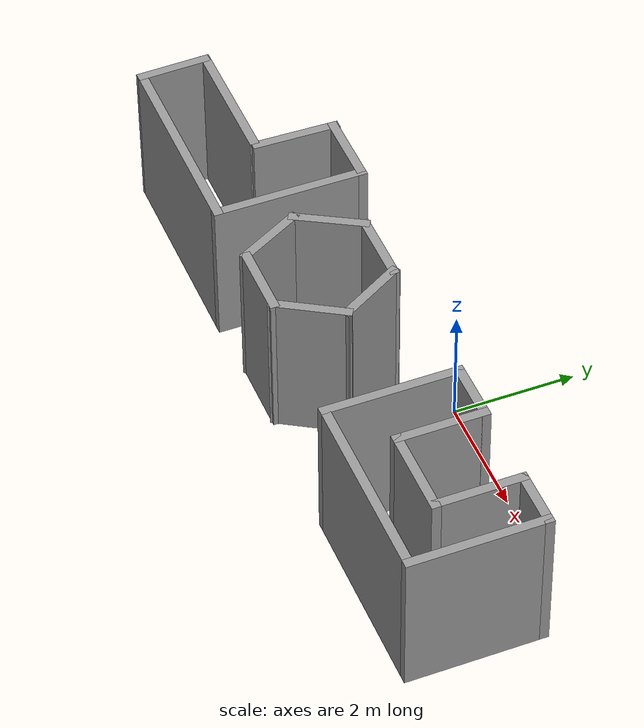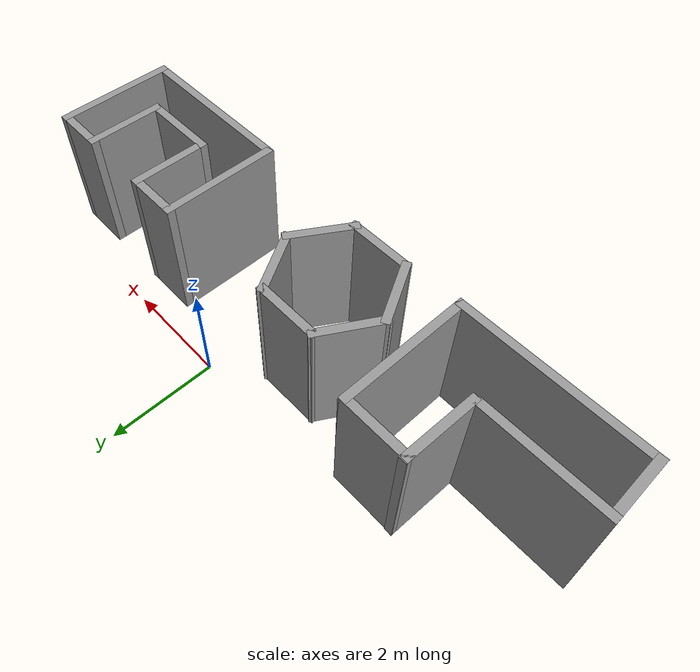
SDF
<?xml version='1.0'?>
<sdf version='1.7'>
  <model name='world_thrid'>
    <pose>-0.958392 -1.37453 0 0 -0 0</pose>
    <link name='Wall_0'>
      <collision name='Wall_0_Collision'>
        <geometry>
          <box>
            <size>1.25 0.15 2.5</size>
          </box>
        </geometry>
        <pose>0 0 1.25 0 -0 0</pose>
      </collision>
      <visual name='Wall_0_Visual'>
        <pose>0 0 1.25 0 -0 0</pose>
        <geometry>
          <box>
            <size>1.25 0.15 2.5</size>
          </box>
        </geometry>
        <material>
          <script>
            <uri>file://media/materials/scripts/gazebo.material</uri>
            <name>Gazebo/Grey</name>
          </script>
          <ambient>1 1 1 1</ambient>
        </material>
        <meta>
          <layer>0</layer>
        </meta>
      </visual>
      <pose>-0.448934 0.709216 0 0 -0 0</pose>
    </link>
    <link name='Wall_1'>
      <collision name='Wall_1_Collision'>
        <geometry>
          <box>
            <size>1.25 0.15 2.5</size>
          </box>
        </geometry>
        <pose>0 0 1.25 0 -0 0</pose>
      </collision>
      <visual name='Wall_1_Visual'>
        <pose>0 0 1.25 0 -0 0</pose>
        <geometry>
          <box>
            <size>1.25 0.15 2.5</size>
          </box>
        </geometry>
        <material>
          <script>
            <uri>file://media/materials/scripts/gazebo.material</uri>
            <name>Gazebo/Grey</name>
          </script>
          <ambient>1 1 1 1</ambient>
        </material>
        <meta>
          <layer>0</layer>
        </meta>
      </visual>
      <pose>0.376066 0.232902 0 0 -0 -1.0472</pose>
    </link>
    <link name='Wall_10'>
      <collision name='Wall_10_Collision'>
        <geometry>
          <box>
            <size>1 0.15 2.5</size>
          </box>
        </geometry>
        <pose>0 0 1.25 0 -0 0</pose>
      </collision>
      <visual name='Wall_10_Visual'>
        <pose>0 0 1.25 0 -0 0</pose>
        <geometry>
          <box>
            <size>1 0.15 2.5</size>
          </box>
        </geometry>
        <material>
          <script>
            <uri>file://media/materials/scripts/gazebo.material</uri>
            <name>Gazebo/Grey</name>
          </script>
          <ambient>1 1 1 1</ambient>
        </material>
        <meta>
          <layer>0</layer>
        </meta>
      </visual>
      <pose>5.0372 0.800469 0 0 -0 3.14159</pose>
    </link>
    <link name='Wall_11'>
      <collision name='Wall_11_Collision'>
        <geometry>
          <box>
            <size>1.5 0.15 2.5</size>
          </box>
        </geometry>
        <pose>0 0 1.25 0 -0 0</pose>
      </collision>
      <visual name='Wall_11_Visual'>
        <pose>0 0 1.25 0 -0 0</pose>
        <geometry>
          <box>
            <size>1.5 0.15 2.5</size>
          </box>
        </geometry>
        <material>
          <script>
            <uri>file://media/materials/scripts/gazebo.material</uri>
            <name>Gazebo/Grey</name>
          </script>
          <ambient>1 1 1 1</ambient>
        </material>
        <meta>
          <layer>0</layer>
        </meta>
      </visual>
      <pose>4.6122 0.125469 0 0 -0 -1.5708</pose>
    </link>
    <link name='Wall_12'>
      <collision name='Wall_12_Collision'>
        <geometry>
          <box>
            <size>1.5 0.15 2.5</size>
          </box>
        </geometry>
        <pose>0 0 1.25 0 -0 0</pose>
      </collision>
      <visual name='Wall_12_Visual'>
        <pose>0 0 1.25 0 -0 0</pose>
        <geometry>
          <box>
            <size>1.5 0.15 2.5</size>
          </box>
        </geometry>
        <material>
          <script>
            <uri>file://media/materials/scripts/gazebo.material</uri>
            <name>Gazebo/Grey</name>
          </script>
          <ambient>1 1 1 1</ambient>
        </material>
        <meta>
          <layer>0</layer>
        </meta>
      </visual>
      <pose>3.9372 -0.549531 0 0 -0 3.14159</pose>
    </link>
    <link name='Wall_13'>
      <collision name='Wall_13_Collision'>
        <geometry>
          <box>
            <size>1.5 0.15 2.5</size>
          </box>
        </geometry>
        <pose>0 0 1.25 0 -0 0</pose>
      </collision>
      <visual name='Wall_13_Visual'>
        <pose>0 0 1.25 0 -0 0</pose>
        <geometry>
          <box>
            <size>1.5 0.15 2.5</size>
          </box>
        </geometry>
        <material>
          <script>
            <uri>file://media/materials/scripts/gazebo.material</uri>
            <name>Gazebo/Grey</name>
          </script>
          <ambient>1 1 1 1</ambient>
        </material>
        <meta>
          <layer>0</layer>
        </meta>
      </visual>
      <pose>3.2622 0.125469 0 0 -0 1.5708</pose>
    </link>
    <link name='Wall_14'>
      <collision name='Wall_14_Collision'>
        <geometry>
          <box>
            <size>1.05 0.15 2.5</size>
          </box>
        </geometry>
        <pose>0 0 1.25 0 -0 0</pose>
      </collision>
      <visual name='Wall_14_Visual'>
        <pose>0 0 1.25 0 -0 0</pose>
        <geometry>
          <box>
            <size>1.05 0.15 2.5</size>
          </box>
        </geometry>
        <material>
          <script>
            <uri>file://media/materials/scripts/gazebo.material</uri>
            <name>Gazebo/Grey</name>
          </script>
          <ambient>1 1 1 1</ambient>
        </material>
        <meta>
          <layer>0</layer>
        </meta>
      </visual>
      <pose>2.8122 0.800469 0 0 -0 3.14159</pose>
    </link>
    <link name='Wall_17'>
      <collision name='Wall_17_Collision'>
        <geometry>
          <box>
            <size>2.25 0.15 2.5</size>
          </box>
        </geometry>
        <pose>0 0 1.25 0 -0 0</pose>
      </collision>
      <visual name='Wall_17_Visual'>
        <pose>0 0 1.25 0 -0 0</pose>
        <geometry>
          <box>
            <size>2.25 0.15 2.5</size>
          </box>
        </geometry>
        <material>
          <script>
            <uri>file://media/materials/scripts/gazebo.material</uri>
            <name>Gazebo/Grey</name>
          </script>
          <ambient>1 1 1 1</ambient>
        </material>
        <meta>
          <layer>0</layer>
        </meta>
      </visual>
      <pose>-4.41007 -0.19307 0 0 -0 3.14159</pose>
    </link>
    <link name='Wall_18'>
      <collision name='Wall_18_Collision'>
        <geometry>
          <box>
            <size>1.20481 0.15 2.5</size>
          </box>
        </geometry>
        <pose>0 0 1.25 0 -0 0</pose>
      </collision>
      <visual name='Wall_18_Visual'>
        <pose>0 0 1.25 0 -0 0</pose>
        <geometry>
          <box>
            <size>1.20481 0.15 2.5</size>
          </box>
        </geometry>
        <material>
          <script>
            <uri>file://media/materials/scripts/gazebo.material</uri>
            <name>Gazebo/Grey</name>
          </script>
          <ambient>1 1 1 1</ambient>
        </material>
        <meta>
          <layer>0</layer>
        </meta>
      </visual>
      <pose>-5.44486 -0.735466 0 0 -0 -1.54195</pose>
    </link>
    <link name='Wall_19'>
      <collision name='Wall_19_Collision'>
        <geometry>
          <box>
            <size>3.5 0.15 2.5</size>
          </box>
        </geometry>
        <pose>0 0 1.25 0 -0 0</pose>
      </collision>
      <visual name='Wall_19_Visual'>
        <pose>0 0 1.25 0 -0 0</pose>
        <geometry>
          <box>
            <size>3.5 0.15 2.5</size>
          </box>
        </geometry>
        <material>
          <script>
            <uri>file://media/materials/scripts/gazebo.material</uri>
            <name>Gazebo/Grey</name>
          </script>
          <ambient>1 1 1 1</ambient>
        </material>
        <meta>
          <layer>0</layer>
        </meta>
      </visual>
      <pose>-3.75465 -1.26265 0 0 -0 0</pose>
    </link>
    <link name='Wall_2'>
      <collision name='Wall_2_Collision'>
        <geometry>
          <box>
            <size>1.26552 0.15 2.5</size>
          </box>
        </geometry>
        <pose>0 0 1.25 0 -0 0</pose>
      </collision>
      <visual name='Wall_2_Visual'>
        <pose>0 0 1.25 0 -0 0</pose>
        <geometry>
          <box>
            <size>1.26552 0.15 2.5</size>
          </box>
        </geometry>
        <material>
          <script>
            <uri>file://media/materials/scripts/gazebo.material</uri>
            <name>Gazebo/Grey</name>
          </script>
          <ambient>1 1 1 1</ambient>
        </material>
        <meta>
          <layer>0</layer>
        </meta>
      </visual>
      <pose>0.360857 -0.719726 0 0 -0 -2.11801</pose>
    </link>
    <link name='Wall_20'>
      <collision name='Wall_20_Collision'>
        <geometry>
          <box>
            <size>2.5 0.15 2.5</size>
          </box>
        </geometry>
        <pose>0 0 1.25 0 -0 0</pose>
      </collision>
      <visual name='Wall_20_Visual'>
        <pose>0 0 1.25 0 -0 0</pose>
        <geometry>
          <box>
            <size>2.5 0.15 2.5</size>
          </box>
        </geometry>
        <material>
          <script>
            <uri>file://media/materials/scripts/gazebo.material</uri>
            <name>Gazebo/Grey</name>
          </script>
          <ambient>1 1 1 1</ambient>
        </material>
        <meta>
          <layer>0</layer>
        </meta>
      </visual>
      <pose>-2.07965 -0.087652 0 0 -0 1.5708</pose>
    </link>
    <link name='Wall_21'>
      <collision name='Wall_21_Collision'>
        <geometry>
          <box>
            <size>1.29653 0.15 2.5</size>
          </box>
        </geometry>
        <pose>0 0 1.25 0 -0 0</pose>
      </collision>
      <visual name='Wall_21_Visual'>
        <pose>0 0 1.25 0 -0 0</pose>
        <geometry>
          <box>
            <size>1.29653 0.15 2.5</size>
          </box>
        </geometry>
        <material>
          <script>
            <uri>file://media/materials/scripts/gazebo.material</uri>
            <name>Gazebo/Grey</name>
          </script>
          <ambient>1 1 1 1</ambient>
        </material>
        <meta>
          <layer>0</layer>
        </meta>
      </visual>
      <pose>-2.65246 1.08735 0 0 -0 3.14159</pose>
    </link>
    <link name='Wall_22'>
      <collision name='Wall_22_Collision'>
        <geometry>
          <box>
            <size>1.42432 0.15 2.5</size>
          </box>
        </geometry>
        <pose>0 0 1.25 0 -0 0</pose>
      </collision>
      <visual name='Wall_22_Visual'>
        <pose>0 0 1.25 0 -0 0</pose>
        <geometry>
          <box>
            <size>1.42432 0.15 2.5</size>
          </box>
        </geometry>
        <material>
          <script>
            <uri>file://media/materials/scripts/gazebo.material</uri>
            <name>Gazebo/Grey</name>
          </script>
          <ambient>1 1 1 1</ambient>
        </material>
        <meta>
          <layer>0</layer>
        </meta>
      </visual>
      <pose>-3.24049 0.465578 0 0 -0 -1.59467</pose>
    </link>
    <link name='Wall_3'>
      <collision name='Wall_3_Collision'>
        <geometry>
          <box>
            <size>1.25 0.15 2.5</size>
          </box>
        </geometry>
        <pose>0 0 1.25 0 -0 0</pose>
      </collision>
      <visual name='Wall_3_Visual'>
        <pose>0 0 1.25 0 -0 0</pose>
        <geometry>
          <box>
            <size>1.25 0.15 2.5</size>
          </box>
        </geometry>
        <material>
          <script>
            <uri>file://media/materials/scripts/gazebo.material</uri>
            <name>Gazebo/Grey</name>
          </script>
          <ambient>1 1 1 1</ambient>
        </material>
        <meta>
          <layer>0</layer>
        </meta>
      </visual>
      <pose>-0.464143 -1.19604 0 0 -0 3.14159</pose>
    </link>
    <link name='Wall_4'>
      <collision name='Wall_4_Collision'>
        <geometry>
          <box>
            <size>1.23511 0.15 2.5</size>
          </box>
        </geometry>
        <pose>0 0 1.25 0 -0 0</pose>
      </collision>
      <visual name='Wall_4_Visual'>
        <pose>0 0 1.25 0 -0 0</pose>
        <geometry>
          <box>
            <size>1.23511 0.15 2.5</size>
          </box>
        </geometry>
        <material>
          <script>
            <uri>file://media/materials/scripts/gazebo.material</uri>
            <name>Gazebo/Grey</name>
          </script>
          <ambient>1 1 1 1</ambient>
        </material>
        <meta>
          <layer>0</layer>
        </meta>
      </visual>
      <pose>-1.28914 -0.719726 0 0 -0 2.07012</pose>
    </link>
    <link name='Wall_5'>
      <collision name='Wall_5_Collision'>
        <geometry>
          <box>
            <size>1.25 0.15 2.5</size>
          </box>
        </geometry>
        <pose>0 0 1.25 0 -0 0</pose>
      </collision>
      <visual name='Wall_5_Visual'>
        <pose>0 0 1.25 0 -0 0</pose>
        <geometry>
          <box>
            <size>1.25 0.15 2.5</size>
          </box>
        </geometry>
        <material>
          <script>
            <uri>file://media/materials/scripts/gazebo.material</uri>
            <name>Gazebo/Grey</name>
          </script>
          <ambient>1 1 1 1</ambient>
        </material>
        <meta>
          <layer>0</layer>
        </meta>
      </visual>
      <pose>-1.27393 0.232902 0 0 -0 1.0472</pose>
    </link>
    <link name='Wall_7'>
      <collision name='Wall_7_Collision'>
        <geometry>
          <box>
            <size>2.25 0.15 2.5</size>
          </box>
        </geometry>
        <pose>0 0 1.25 0 -0 0</pose>
      </collision>
      <visual name='Wall_7_Visual'>
        <pose>0 0 1.25 0 -0 0</pose>
        <geometry>
          <box>
            <size>2.25 0.15 2.5</size>
          </box>
        </geometry>
        <material>
          <script>
            <uri>file://media/materials/scripts/gazebo.material</uri>
            <name>Gazebo/Grey</name>
          </script>
          <ambient>1 1 1 1</ambient>
        </material>
        <meta>
          <layer>0</layer>
        </meta>
      </visual>
      <pose>2.3622 -0.249531 0 0 -0 -1.5708</pose>
    </link>
    <link name='Wall_8'>
      <collision name='Wall_8_Collision'>
        <geometry>
          <box>
            <size>3.25 0.15 2.5</size>
          </box>
        </geometry>
        <pose>0 0 1.25 0 -0 0</pose>
      </collision>
      <visual name='Wall_8_Visual'>
        <pose>0 0 1.25 0 -0 0</pose>
        <geometry>
          <box>
            <size>3.25 0.15 2.5</size>
          </box>
        </geometry>
        <material>
          <script>
            <uri>file://media/materials/scripts/gazebo.material</uri>
            <name>Gazebo/Grey</name>
          </script>
          <ambient>1 1 1 1</ambient>
        </material>
        <meta>
          <layer>0</layer>
        </meta>
      </visual>
      <pose>3.9122 -1.29953 0 0 -0 0</pose>
    </link>
    <link name='Wall_9'>
      <collision name='Wall_9_Collision'>
        <geometry>
          <box>
            <size>2.25 0.15 2.5</size>
          </box>
        </geometry>
        <pose>0 0 1.25 0 -0 0</pose>
      </collision>
      <visual name='Wall_9_Visual'>
        <pose>0 0 1.25 0 -0 0</pose>
        <geometry>
          <box>
            <size>2.25 0.15 2.5</size>
          </box>
        </geometry>
        <material>
          <script>
            <uri>file://media/materials/scripts/gazebo.material</uri>
            <name>Gazebo/Grey</name>
          </script>
          <ambient>1 1 1 1</ambient>
        </material>
        <meta>
          <layer>0</layer>
        </meta>
      </visual>
      <pose>5.4622 -0.249531 0 0 -0 1.5708</pose>
    </link>
    <static>1</static>
  </model>
</sdf>
